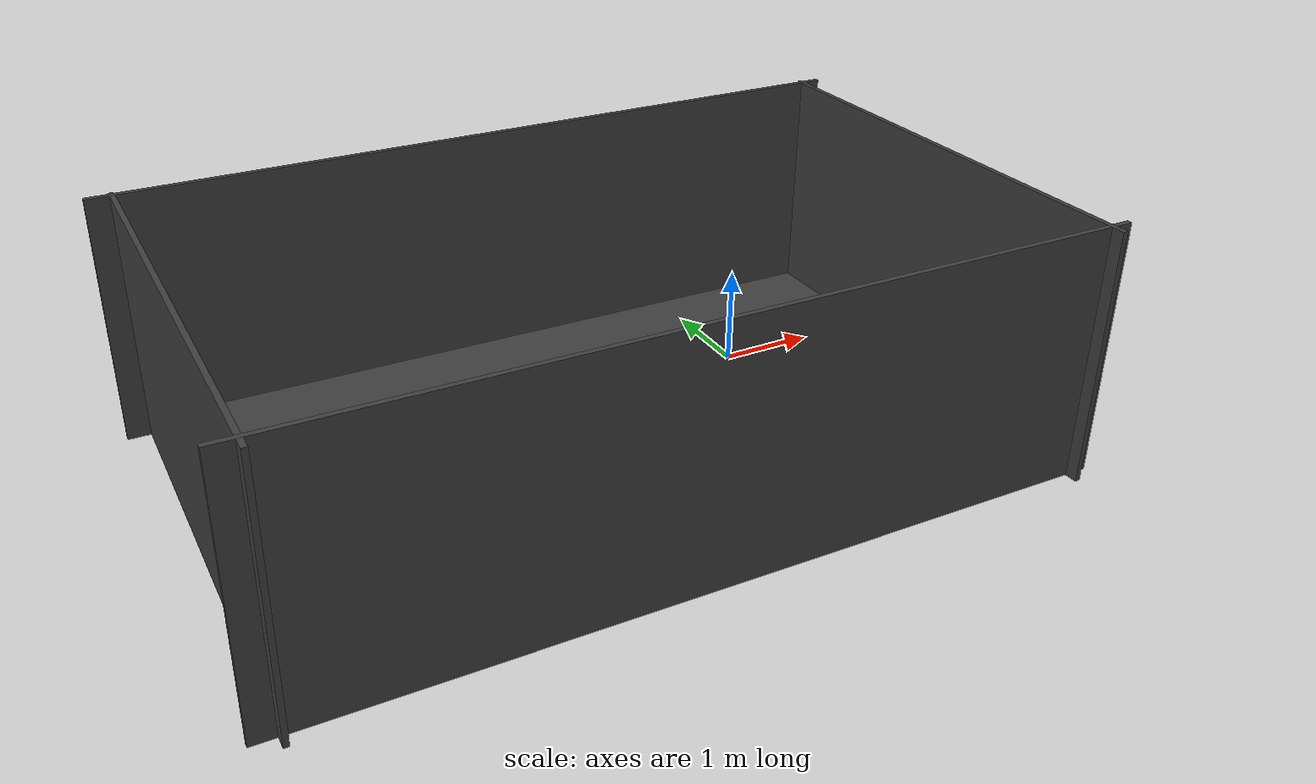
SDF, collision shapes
<?xml version="1.0" ?>
<sdf version="1.6">
  <model name="kth_tank">
    <static>true</static>
    <pose>0 0 0 0 0 0</pose>

    <link name="tank_link">
      <!-- Visual representation using the OBJ mesh -->
      <visual name="visual">
        <pose>0 0 0 1.571 0 0</pose>
        <geometry>
          <mesh>
            <uri>model://kth_tank/meshes/kth_tank_complete.obj</uri>
            <scale>1 1 1</scale>
          </mesh>
        </geometry>
        <material>
          <!-- Dark grey -->
          <ambient>0.15 0.15 0.15 1</ambient>
          <diffuse>0.25 0.25 0.25 1</diffuse>
          <specular>0.05 0.05 0.05 1</specular>
        </material>
      </visual>

      <!-- Water volume visual -->
      <visual name="water_volume_visual">
        <pose>-2.175 -1.15 1.3 0 0 0</pose>
        <cast_shadows>false</cast_shadows>
        <geometry>
          <box>
            <size>7.4 4.55 2.55</size>
          </box>
        </geometry>
        <material>
          <ambient>0.0 0.3 0.5 1</ambient>
          <diffuse>0.0 0.5 0.8 1</diffuse>
          <specular>0.5 0.5 0.5 1</specular>
        </material>
        <transparency>0.5</transparency>
      </visual>

      <!-- Simple box collisions -->
      <!-- Bottom / floor (Z min) -->
      <collision name="tank_floor_box">
        <pose>-2.175 -1.15 0.17 0 0 0</pose>
        <geometry>
          <box>
            <size>7.4 4.55 0.1</size>
          </box>
        </geometry>
      </collision>

      <!-- West wall (X min / negative X) -->
      <collision name="tank_wall_x_min">
        <pose>-5.9 -1.2 1.3 0 0 0</pose>
        <geometry>
          <box>
            <size>0.05 4.8 2.5</size>
          </box>
        </geometry>
      </collision>

      <!-- East wall (X max / positive X) -->
      <collision name="tank_wall_x_max">
        <pose>1.55 -1.2 1.3 0 0 0</pose>
        <geometry>
          <box>
            <size>0.05 4.8 2.5</size>
          </box>
        </geometry>
      </collision>
      <visual name="tank_wall_x_max_visual">
        <!-- slight outward offset to avoid z-fighting -->
        <pose>1.60 -1.2 1.3 0 0 0</pose>
        <geometry>
          <box>
            <!-- slightly thicker than collision for visibility -->
            <size>0.08 4.8 2.5</size>
          </box>
        </geometry>
        <material>
          <!-- Same dark grey as tank mesh -->
          <ambient>0.15 0.15 0.15 1</ambient>
          <diffuse>0.25 0.25 0.25 1</diffuse>
          <specular>0.05 0.05 0.05 1</specular>
        </material>
      </visual>

      <!-- South wall (Y min / negative Y) -->
      <collision name="tank_wall_y_min">
        <pose>-2.2 -3.45 1.3 0 0 0</pose>
        <geometry>
          <box>
            <size>7.9 0.05 2.5</size>
          </box>
        </geometry>
      </collision>

      <!-- North wall (Y max / positive Y) -->
      <collision name="tank_wall_y_max">
        <pose>-2.2 1.15 1.3 0 0 0</pose>
        <geometry>
          <box>
            <size>7.9 0.05 2.5</size>
          </box>
        </geometry>
      </collision>

    </link>

  </model>
</sdf>
